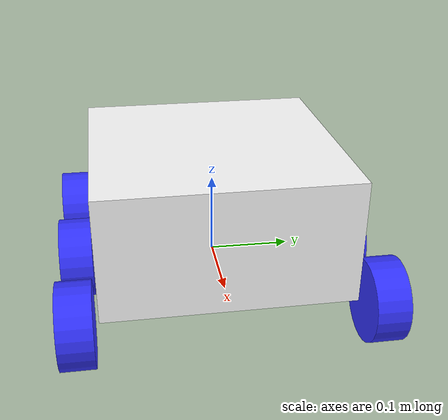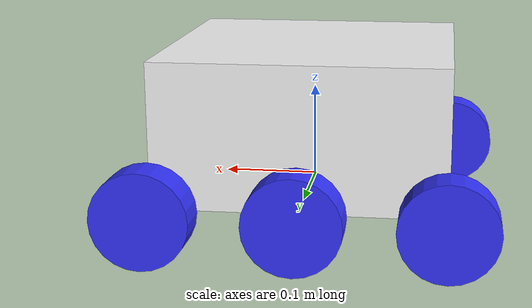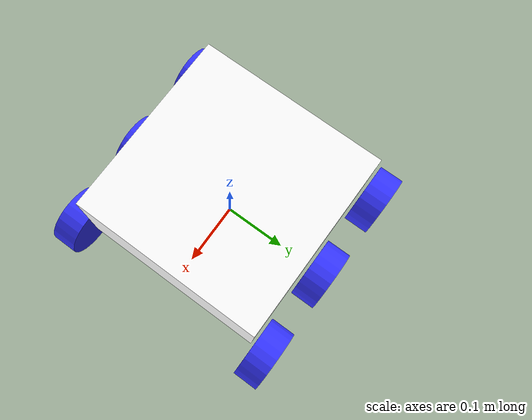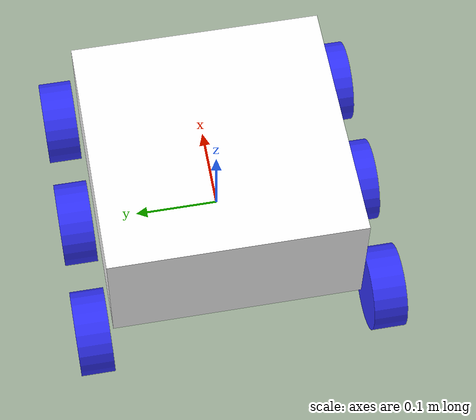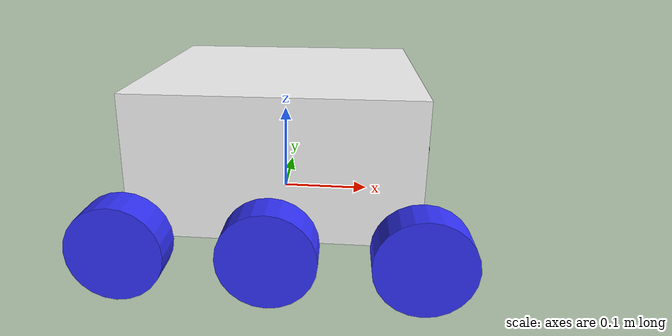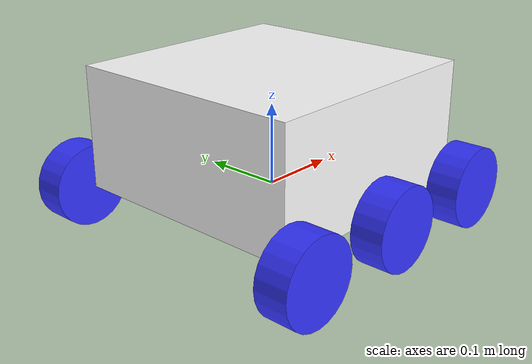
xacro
<?xml version="1.0"?>
<robot xmlns:xacro="http://ww.ros.org/wiki/xacro" >

    <xacro:include filename="inertial_macros.xacro" />

    <material name="white">
        <color rgba="1 1 1 1" />
    </material>

    <material name="orange">
        <color rgba="1 0.3 0.1 1" />
    </material>

    <material name="blue">
        <color rgba="0.2 0.2 1 1" />
    </material>

    <material name="black">
        <color rgba="0 0 0 1" />
    </material>

    <material name="red">
        <color rgba="1 0 0 1" />
    </material>

    <!-- BASE LINK -->
    <link name="base_link">

    </link>

    <!-- BASE_FOOTPRINT LINK -->

    <joint name="base_footprint_joint" type="fixed">
        <parent link="base_footprint"/>
        <child link="base_link"/>
        <origin xyz="0 0 0" rpy="0 0 0"/>
    </joint>

    <link name="base_footprint">
    </link>

    <!-- CHASSIS LINK -->
    <joint name="chassis_joint" type="fixed">
        <parent link="base_link" />
        <child link="chassis" />
        <origin xyz="0 0 0.075" />
    </joint>

    <link name="chassis">
        <visual>
            <origin xyz="0 0 0"/>
            <geometry>
                <box size="0.3 0.3 0.15"/>
            </geometry>
            <material name="white" />
        </visual>
        <collision>
            <origin xyz="0 0 0"/>
            <geometry>
                <box size="0.3 0.3 0.15"/>
            </geometry>
        </collision>
        <xacro:inertial_box mass ="0.5" x=" 0.3" y="0.3" z="0.15">
            <origin xyz="0 0 0" rpy="0.0 0.0 0.0"/>
        </xacro:inertial_box>
    </link>

    <gazebo reference="chassis">
        <material>Gazebo/White</material>
    </gazebo>

    <!-- fr WHEEL LINK -->
    <joint name="fr_wheel_joint" type="continuous">
        <parent link="base_link"/>
        <child link="fr_wheel"/>
        <origin xyz="0.15 -0.175 0" rpy="-${pi/2} 0.0 0.0"/>
        <axis xyz="0 0 1"/>
    </joint>

    <link name="fr_wheel">
        <visual>
            <geometry>
                <cylinder radius="0.05" length="0.04"/>
            </geometry>
            <material name="blue"/>
        </visual>
        <collision>
            <geometry>
                <cylinder radius="0.05" length="0.04"/>
            </geometry>
        </collision>
        <xacro:inertial_cylinder mass="0.1" length="0.04" radius="0.05">
            <origin xyz="0.0 0.0 0.0" rpy="0.0 0.0 0.0"/>
        </xacro:inertial_cylinder>
    </link>

    <gazebo reference="fr_wheel">
        <material>Gazebo/Blue</material>
    </gazebo>

    <!-- fl WHEEL LINK -->
    <joint name="fl_wheel_joint" type="continuous">
        <parent link="base_link"/>
        <child link="fl_wheel"/>
        <origin xyz="0.15 0.175 0" rpy="-${pi/2} 0.0 0.0"/>
        <axis xyz="0 0 1"/>
    </joint>

    <link name="fl_wheel">
        <visual>
            <geometry>
                <cylinder radius="0.05" length="0.04"/>
            </geometry>
            <material name="blue"/>
        </visual>
        <collision>
            <geometry>
                <cylinder radius="0.05" length="0.04"/>
            </geometry>
        </collision>
        <xacro:inertial_cylinder mass="0.1" length="0.04" radius="0.05">
            <origin xyz="0.0 0.0 0.0" rpy="0.0 0.0 0.0"/>
        </xacro:inertial_cylinder>
    </link>

    <gazebo reference="fl_wheel">
        <material>Gazebo/Blue</material>
    </gazebo>

    <!-- mr WHEEL LINK -->
    <joint name="mr_wheel_joint" type="continuous">
        <parent link="base_link"/>
        <child link="mr_wheel"/>
        <origin xyz="0 -0.175 0" rpy="-${pi/2} 0.0 0.0"/>
        <axis xyz="0 0 1"/>
    </joint>

    <link name="mr_wheel">
        <visual>
            <geometry>
                <cylinder radius="0.05" length="0.04"/>
            </geometry>
            <material name="blue"/>
        </visual>
        <collision>
            <geometry>
                <cylinder radius="0.05" length="0.04"/>
            </geometry>
        </collision>
        <xacro:inertial_cylinder mass="0.1" length="0.04" radius="0.05">
            <origin xyz="0.0 0.0 0.0" rpy="0.0 0.0 0.0"/>
        </xacro:inertial_cylinder>
    </link>

    <gazebo reference="mr_wheel">
        <material>Gazebo/Blue</material>
    </gazebo>

    <!-- ml WHEEL LINK -->
    <joint name="ml_wheel_joint" type="continuous">
        <parent link="base_link"/>
        <child link="ml_wheel"/>
        <origin xyz="0 0.175 0" rpy="-${pi/2} 0.0 0.0"/>
        <axis xyz="0 0 1"/>
    </joint>

    <link name="ml_wheel">
        <visual>
            <geometry>
                <cylinder radius="0.05" length="0.04"/>
            </geometry>
            <material name="blue"/>
        </visual>
        <collision>
            <geometry>
                <cylinder radius="0.05" length="0.04"/>
            </geometry>
        </collision>
        <xacro:inertial_cylinder mass="0.1" length="0.04" radius="0.05">
            <origin xyz="0.0 0.0 0.0" rpy="0.0 0.0 0.0"/>
        </xacro:inertial_cylinder>
    </link>

    <gazebo reference="ml_wheel">
        <material>Gazebo/Blue</material>
    </gazebo>

    <!-- rr WHEEL LINK -->
    <joint name="rr_wheel_joint" type="continuous">
        <parent link="base_link"/>
        <child link="rr_wheel"/>
        <origin xyz="-0.15 -0.175 0" rpy="-${pi/2} 0.0 0.0"/>
        <axis xyz="0 0 1"/>
    </joint>

    <link name="rr_wheel">
        <visual>
            <geometry>
                <cylinder radius="0.05" length="0.04"/>
            </geometry>
            <material name="blue"/>
        </visual>
        <collision>
            <geometry>
                <cylinder radius="0.05" length="0.04"/>
            </geometry>
        </collision>
        <xacro:inertial_cylinder mass="0.1" length="0.04" radius="0.05">
            <origin xyz="0.0 0.0 0.0" rpy="0.0 0.0 0.0"/>
        </xacro:inertial_cylinder>
    </link>

    <gazebo reference="rr_wheel">
        <material>Gazebo/Blue</material>
    </gazebo>

    <!-- rl WHEEL LINK -->
    <joint name="rl_wheel_joint" type="continuous">
        <parent link="base_link"/>
        <child link="rl_wheel"/>
        <origin xyz="-0.15 0.175 0" rpy="-${pi/2} 0.0 0.0"/>
        <axis xyz="0 0 1"/>
    </joint>

    <link name="rl_wheel">
        <visual>
            <geometry>
                <cylinder radius="0.05" length="0.04"/>
            </geometry>
            <material name="blue"/>
        </visual>
        <collision>
            <geometry>
                <cylinder radius="0.05" length="0.04"/>
            </geometry>
        </collision>
        <xacro:inertial_cylinder mass="0.1" length="0.04" radius="0.05">
            <origin xyz="0.0 0.0 0.0" rpy="0.0 0.0 0.0"/>
        </xacro:inertial_cylinder>
    </link>

    <gazebo reference="rl_wheel">
        <material>Gazebo/Blue</material>
    </gazebo>
</robot>
